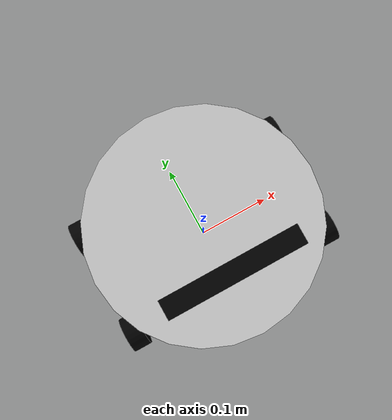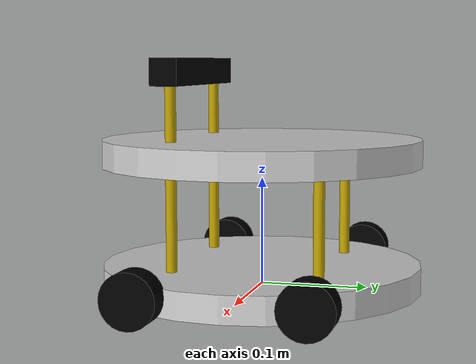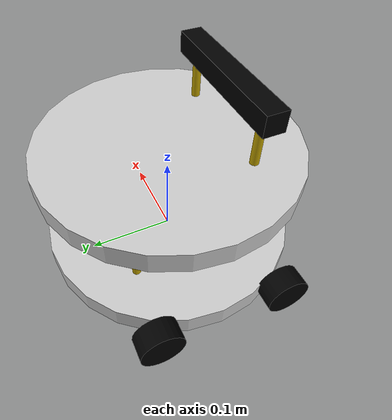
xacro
<?xml version='1.0'?>

<robot name="ultron">
  <gazebo reference="chassis_top">
      <material>Gazebo/Blue</material>
  </gazebo>

  <!-- < Materials > -->

  <material name="white">
    <color rgba="0.8 0.8 0.8 1"/>
  </material>

  <material name="gold">
    <color rgba="0.75 0.63 0 1"/>
  </material>

  <material name="black">
    <color rgba="0 0 0 1"/>
  </material>

  <!-- < Chassis Top Parent Link > -->

  <link name='chassis_top'>
    <pose>0 0 0.1 0 0 0</pose>

    <inertial>
      <mass value="1.0"/>
      <origin xyz="0.0 0 0" rpy=" 0 0 0"/>
      <inertia
          ixx="0" ixy="0" ixz="0"
          iyy="0" iyz="0"
          izz="0"
      />
    </inertial>

    <collision name='chassis_collision'>
      <origin xyz="0 0 0.125" rpy=" 0 0 0"/>
      <geometry>
        <cylinder length="0.025" radius="0.15"/>
      </geometry>
    </collision>

    <visual name='chassis_visual'>
      <origin xyz="0 0 0.125" rpy=" 0 0 0"/>
      <geometry>
       <cylinder length="0.025" radius="0.15"/>
      </geometry>
      <material name="white"/>
    </visual>

  </link>

  <!-- < Chassis Bottom Component > -->

  <link name='chassis_bottom'>
    <pose>0 0 0.1 0 0 0</pose>

    <inertial>
      <mass value="1.0"/>
      <origin xyz="0.0 0 0" rpy=" 0 0 0"/>
      <inertia
          ixx="0" ixy="0" ixz="0"
          iyy="0" iyz="0"
          izz="0"
      />
    </inertial>

    <collision name='chassis_collision'>
      <origin xyz="0 0 0.0" rpy=" 0 0 0"/>
      <geometry>
        <cylinder length="0.025" radius="0.15"/>
      </geometry>
    </collision>

    <visual name='chassis_visual'>
      <origin xyz="0 0 0.0" rpy=" 0 0 0"/>
      <geometry>
       <cylinder length="0.025" radius="0.15"/>
      </geometry>
      <material name="white"/>
    </visual>

  </link>

  <joint name="joint_chassis_top_bottom" type="fixed">
    <origin xyz="0.0 0.0 0.0075" rpy="0.0 0.0 0.0"/>
    <parent link="chassis_top"/>
    <child link="chassis_bottom"/>
  </joint>

  <!-- < Wheels Back Left Component > -->

  <link name="wheels_back_left">
    <pose>0 0 0.1 0 0 0</pose>

    <inertial>
      <mass value="0.5"/>
      <origin xyz="0.0 0 0" rpy=" 0 0 0"/>
      <inertia
          ixx="0" ixy="0" ixz="0"
          iyy="0" iyz="0"
          izz="0"
      />
    </inertial>

    <collision name='left_wheel_collision'>
      <origin xyz="0 0 0" rpy=" 0 1.57075 0"/>
      <geometry>
        <cylinder length="0.025" radius="0.025"/>
      </geometry>
    </collision>

    <visual name='left_wheel_visual'>
      <origin xyz="0 0 0" rpy=" 0 1.57075 0"/>
      <geometry>
        <cylinder length="0.025" radius="0.025"/>
      </geometry>
      <material name="black"/>
    </visual>
  </link>

  <joint name="joint_chassis_wheels_back_left" type="continuous">
    <origin xyz="-0.15 0.075 0.0125" rpy=" 0 0 0"/>
    <parent link="chassis_top"/>
    <child link="wheels_back_left"/>
    <axis xyz="1.0 0.0 0.0"/>
    <limit lower="0.0" upper="0.0" effort="50.0" velocity="0.5"/>
  </joint>

  <!-- < Wheels Front Right Component > -->

  <link name="wheels_back_right">
    <pose>0 0 0.1 0 0 0</pose>

    <inertial>
      <mass value="0.5"/>
      <origin xyz="0 0 0" rpy=" 0 0 0"/>
      <inertia
          ixx="0" ixy="0" ixz="0"
          iyy="0" iyz="0"
          izz="0"
      />
    </inertial>

    <collision name='right_wheel_collision'>
      <origin xyz="0 0 0" rpy=" 0 1.57075 0"/>
      <geometry>
        <cylinder length="0.025" radius="0.025"/>
      </geometry>
    </collision>

    <visual name='right_wheel_visual'>
      <origin xyz="0 0 0" rpy=" 0 1.57075 0"/>
      <geometry>
        <cylinder length="0.025" radius="0.025"/>
      </geometry>
      <material name="black"/>
    </visual>
  </link>

  <joint name="joint_chassis_wheels_back_right" type="continuous">
    <origin xyz="0.15 0.075 0.0125" rpy=" 0 0 0"/>
    <parent link="chassis_top"/>
    <child link="wheels_back_right"/>
    <axis xyz="1.0 0.0 0.0"/>
    <limit lower="0.0" upper="0.0" effort="50.0" velocity="0.5"/>
  </joint>

  <!-- < Wheels Front Left Component > -->

  <link name="wheels_front_left">
    <pose>0 0 0.1 0 0 0</pose>

    <inertial>
      <mass value="0.5"/>
      <origin xyz="0.0 0 0" rpy=" 0 0 0"/>
      <inertia
          ixx="0" ixy="0" ixz="0"
          iyy="0" iyz="0"
          izz="0"
      />
    </inertial>

    <collision name='left_wheel_collision'>
      <origin xyz="0 0 0" rpy=" 0 1.57075 0"/>
      <geometry>
        <cylinder length="0.025" radius="0.025"/>
      </geometry>
    </collision>

    <visual name='left_wheel_visual'>
      <origin xyz="0 0 0" rpy=" 0 1.57075 0"/>
      <geometry>
        <cylinder length="0.025" radius="0.025"/>
      </geometry>
      <material name="black"/>
    </visual>
  </link>

  <joint name="joint_chassis_wheels_front_left" type="continuous">
    <origin xyz="-0.15 -0.075 0.0125" rpy=" 0 0 0"/>
    <parent link="chassis_top"/>
    <child link="wheels_front_left"/>
    <axis xyz="1.0 0.0 0.0"/>
    <limit lower="0.0" upper="0.0" effort="50.0" velocity="0.5"/>
  </joint>

  <!-- < Wheels Front Right Component > -->

  <link name="wheels_front_right">
    <pose>0 0 0.1 0 0 0</pose>

    <inertial>
      <mass value="0.5"/>
      <origin xyz="0.0 0 0" rpy=" 0 0 0"/>
      <inertia
          ixx="0" ixy="0" ixz="0"
          iyy="0" iyz="0"
          izz="0"
      />
    </inertial>

    <collision name='right_wheel_collision'>
      <origin xyz="0 0 0" rpy=" 0 1.57075 0"/>
      <geometry>
        <cylinder length="0.025" radius="0.025"/>
      </geometry>
    </collision>

    <visual name='right_wheel_visual'>
      <origin xyz="0 0 0" rpy=" 0 1.57075 0"/>
      <geometry>
        <cylinder length="0.025" radius="0.025"/>
      </geometry>
      <material name="black"/>
    </visual>
  </link>

  <joint name="joint_chassis_wheels_front_right" type="continuous">
    <origin xyz="0.15 -0.075 0.0125" rpy=" 0 0 0"/>
    <parent link="chassis_top"/>
    <child link="wheels_front_right"/>
    <axis xyz="1.0 0.0 0.0"/>
    <limit lower="0.0" upper="0.0" effort="50.0" velocity="0.5"/>
  </joint>

  <!-- < Bottom Connector Component > -->

  <link name="connector_bottom_back_right">
  <pose>0 0 0.1 0 0 0</pose>

    <inertial>
      <mass value="1.0"/>
      <origin xyz="0.0 0 0" rpy=" 0 0 0"/>
      <inertia
          ixx="0" ixy="0" ixz="0"
          iyy="0" iyz="0"
          izz="0"
      />
    </inertial>

    <collision name='connector_0_collision'>
      <origin xyz="0 0 0" rpy=" 0 0 0"/>
      <geometry>
        <cylinder length="0.1" radius="0.005"/>
      </geometry>
    </collision>

    <visual name='connector_0_visual'>
      <origin xyz="0 0 0" rpy=" 0 0 0"/>
      <geometry>
        <cylinder length="0.1" radius="0.005"/>
      </geometry>
      <material name="gold"/>
    </visual>
     </link>

  <joint name="joint_chassis_top_bbr_connector" type="fixed">
    <origin xyz="0.0675 0.0675 0.065" rpy="0.0 0.0 0.0"/>
    <parent link="chassis_top"/>
    <child link="connector_bottom_back_right"/>
  </joint>

  <!-- < Bottom Connector Component > -->

 <link name="connector_bottom_back_left">
  <pose>0 0 0.1 0 0 0</pose>

    <inertial>
      <mass value="1.0"/>
      <origin xyz="0.0 0 0" rpy=" 0 0 0"/>
      <inertia
          ixx="0" ixy="0" ixz="0"
          iyy="0" iyz="0"
          izz="0"
      />
    </inertial>

    <collision name='connector_1_collision'>
      <origin xyz="0 0 0" rpy=" 0 0 0"/>
      <geometry>
        <cylinder length="0.1" radius="0.005"/>
      </geometry>
    </collision>

    <visual name='connector_1_visual'>
      <origin xyz="0 0 0" rpy=" 0 0 0"/>
      <geometry>
        <cylinder length="0.1" radius="0.005"/>
      </geometry>
      <material name="gold"/>
    </visual>
  </link>

  <joint name="joint_chassis_top_bbl_connector" type="fixed">
    <origin xyz="-0.0675 0.0675 0.065" rpy="0.0 0.0 0.0"/>
    <parent link="chassis_top"/>
    <child link="connector_bottom_back_left"/>
   </joint>

<!-- < Bottom Front Left Connector Component > -->

 <link name="connector_bottom_front_right">
  <pose>0 0 0.1 0 0 0</pose>

    <inertial>
      <mass value="1.0"/>
      <origin xyz="0.0 0 0" rpy=" 0 0 0"/>
      <inertia
          ixx="0" ixy="0" ixz="0"
          iyy="0" iyz="0"
          izz="0"
      />
    </inertial>

    <collision name='connector_2_collision'>
      <origin xyz="0 0 0" rpy=" 0 0 0"/>
      <geometry>
        <cylinder length="0.1" radius="0.005"/>
      </geometry>
    </collision>

    <visual name='connector_2_visual'>
      <origin xyz="0 0 0" rpy=" 0 0 0"/>
      <geometry>
        <cylinder length="0.1" radius="0.005"/>
      </geometry>
      <material name="gold"/>
    </visual>
  </link>

  <joint name="joint_chassis_top_bfr_connector" type="fixed">
    <origin xyz="-0.0675 -0.0675 0.065" rpy="0.0 0.0 0.0"/>
    <parent link="chassis_top"/>
    <child link="connector_bottom_front_right"/>
  </joint>

  <!-- < Bottom Front Left Connector Component > -->

 <link name="connector_bottom_front_left">
  <pose>0 0 0.1 0 0 0</pose>

    <inertial>
      <mass value="1.0"/>
      <origin xyz="0.0 0 0" rpy=" 0 0 0"/>
      <inertia
          ixx="0" ixy="0" ixz="0"
          iyy="0" iyz="0"
          izz="0"
      />
    </inertial>

    <collision name='connector_3_collision'>
      <origin xyz="0 0 0" rpy=" 0 0 0"/>
      <geometry>
        <cylinder length="0.1" radius="0.005"/>
      </geometry>
    </collision>

    <visual name='connector_3_visual'>
      <origin xyz="0 0 0" rpy=" 0 0 0"/>
      <geometry>
        <cylinder length="0.1" radius="0.005"/>
      </geometry>
      <material name="gold"/>
    </visual>
  </link>

  <joint name="joint_chassis_top_bfl_connector" type="fixed">
    <origin xyz="0.0675 -0.0675 0.065" rpy="0.0 0.0 0.0"/>
    <parent link="chassis_top"/>
    <child link="connector_bottom_front_left"/>
  </joint>

  <!-- < Top Right Connector Component > -->

  <link name="connector_top_right">
  <pose>0 0 0.1 0 0 0</pose>

    <inertial>
      <mass value="1.0"/>
      <origin xyz="0.0 0 0" rpy=" 0 0 0"/>
      <inertia
          ixx="0" ixy="0" ixz="0"
          iyy="0" iyz="0"
          izz="0"
      />
    </inertial>

    <collision name='connector_0_collision'>
      <origin xyz="0 0 0" rpy=" 0 0 0"/>
      <geometry>
        <cylinder length="0.075" radius="0.005"/>
      </geometry>
    </collision>

    <visual name='connector_0_visual'>
      <origin xyz="0 0 0" rpy=" 0 0 0"/>
      <geometry>
        <cylinder length="0.05" radius="0.005"/>
      </geometry>
      <material name="gold"/>
    </visual>
  </link>

  <joint name="joint_chassis_top_top_right_connector" type="fixed">
    <origin xyz="0.0675 -0.0675 0.1625" rpy="0.0 0.0 0.0"/>
    <parent link="chassis_top"/>
    <child link="connector_top_right"/>
  </joint>

  <!-- < Top Left Connector Component > -->

  <link name="connector_top_left">
  <pose>0 0 0.1 0 0 0</pose>

    <inertial>
      <mass value="1.0"/>
      <origin xyz="0.0 0 0" rpy=" 0 0 0"/>
      <inertia
          ixx="0" ixy="0" ixz="0"
          iyy="0" iyz="0"
          izz="0"
      />
    </inertial>

    <collision name='connector_1_collision'>
      <origin xyz="0 0 0" rpy=" 0 0 0"/>
      <geometry>
        <cylinder length="0.05" radius="0.005"/>
      </geometry>
    </collision>

    <visual name='connector_1_visual'>
      <origin xyz="0 0 0" rpy=" 0 0 0"/>
      <geometry>
        <cylinder length="0.05" radius="0.005"/>
      </geometry>
      <material name="gold"/>
    </visual>
  </link>

  <joint name="joint_chassis_top_top_left_connector" type="fixed">
    <origin xyz="-0.0675 -0.0675 0.1625" rpy="0.0 0.0 0.0"/>
    <parent link="chassis_top"/>
    <child link="connector_top_left"/>
  </joint>

   <!-- < Head Component > -->

  <joint name="joint_chassis_top_head" type="fixed">
    <origin xyz="0 0 0" rpy="0.0 0.0 0.0"/>
    <parent link="chassis_top"/>
    <child link="head"/>
  </joint>

  <link name="head">
  <pose>0 0 0.1 0 0 0</pose>

    <inertial>
      <mass value="0.5"/>
      <origin xyz="0.0 0 0" rpy=" 0 0 0"/>
    <inertia
          ixx="0" ixy="0" ixz="0"
          iyy="0" iyz="0"
          izz="0"
      />
    </inertial>

    <collision name='head'>
      <origin xyz="0 -0.0675 0.2" rpy=" 0 0 0"/>
      <geometry>
          <box size="0.175 0.025 0.025"/>
      </geometry>
    </collision>

    <visual name='head'>
      <origin xyz="0 -0.0675 0.2" rpy=" 0 0 0"/>
      <geometry>
          <box size="0.175 0.025 0.025"/>
      </geometry>
      <material name="black"/>
    </visual>
  </link>

</robot>
